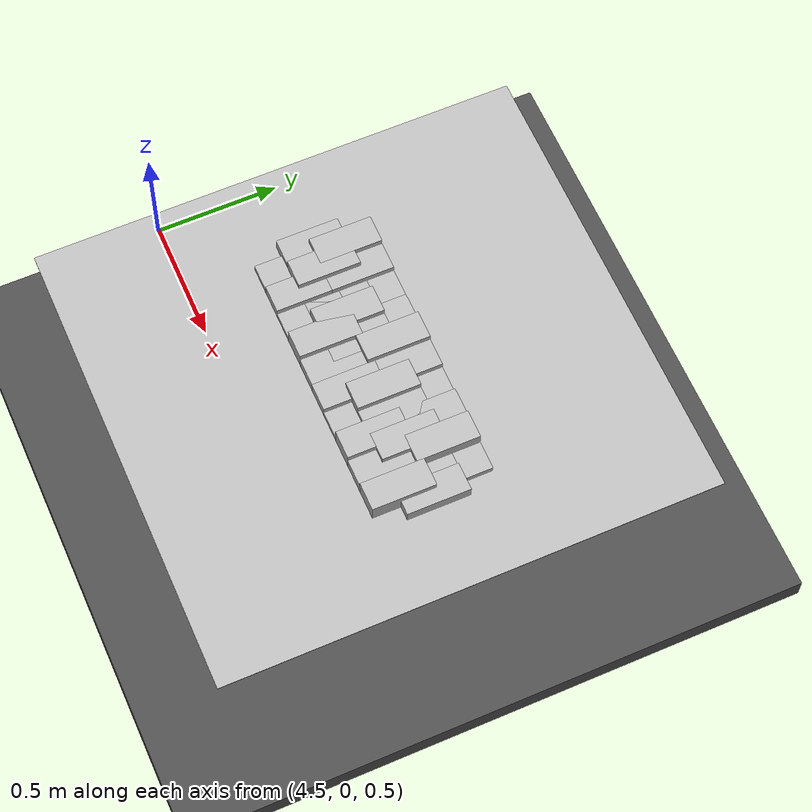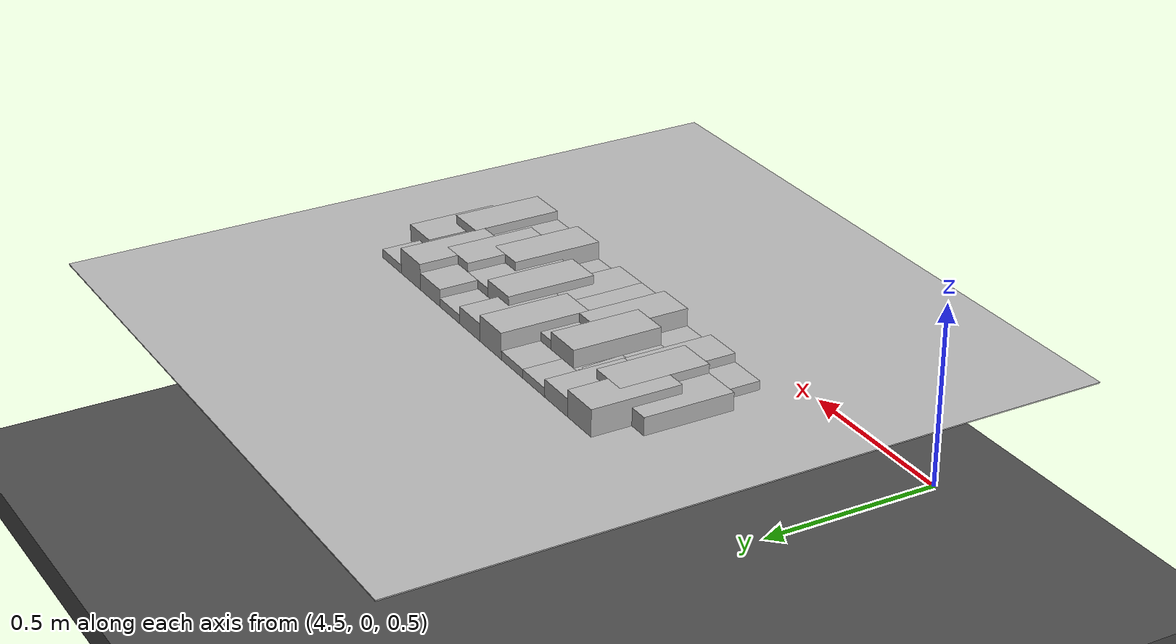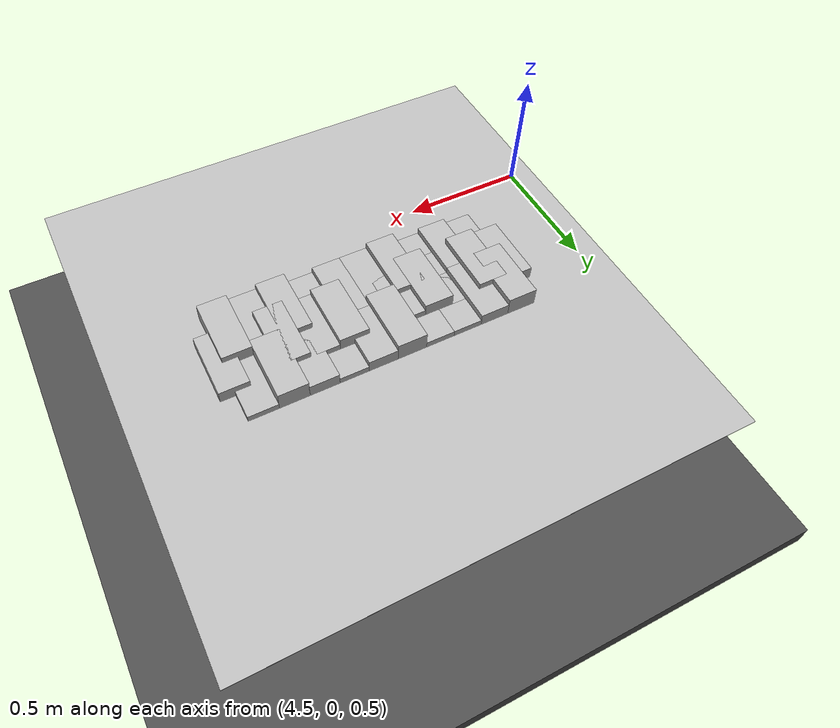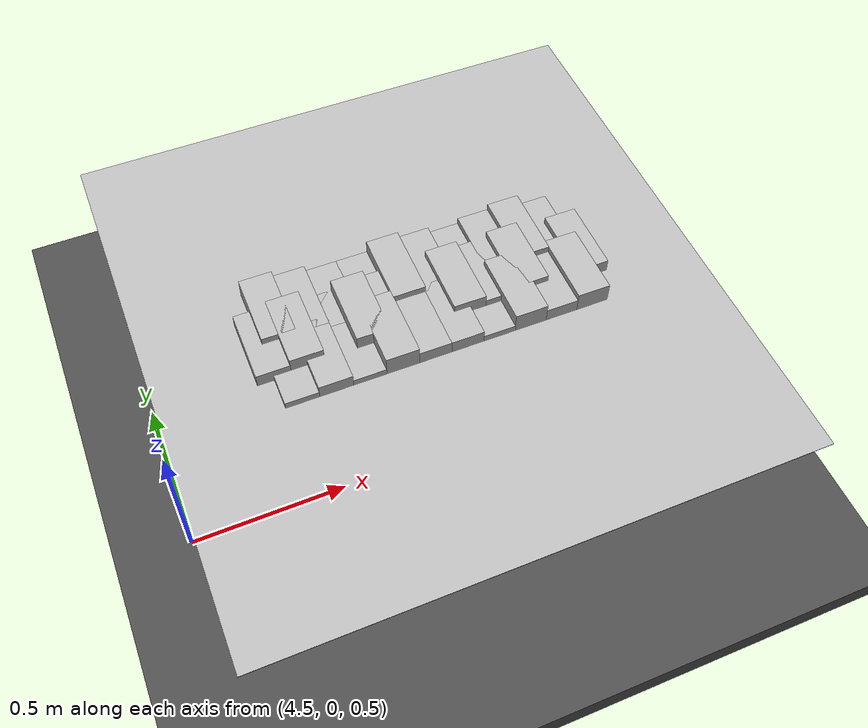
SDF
<sdf version="1.6">
 <world name="default">
  <model name="ground_plane">
   <static>1</static>
   <link name="link">
    <collision name="collision">
     <geometry><plane><normal>0 0 1</normal><size>100 100</size></plane></geometry>
     <surface><friction><ode><mu>100</mu><mu2>50</mu2></ode></friction></surface>
    </collision>
    <visual name="visual">
     <cast_shadows>0</cast_shadows>
     <geometry><plane><normal>0 0 1</normal><size>100 100</size></plane></geometry>
     <material>
      <script><uri>file://media/materials/scripts/gazebo.material</uri><name>Gazebo/Grey</name></script>
     </material>
    </visual>
   </link>
  </model>
  <model name="frc2016_roughterrain_0">
   <link name="link_clone_22">
    <pose>5.57109 0.4713 -0.073164 0 -0 0</pose>
    <inertial>
     <inertia><ixx>nan</ixx><ixy>0</ixy><ixz>0</ixz><iyy>nan</iyy><iyz>0</iyz><izz>nan</izz></inertia>
     <mass>0</mass>
    </inertial>
    <visual name="row1_block5_md">
     <pose>0.05715 0.1143 0.10968 0 -0 0</pose>
     <geometry><box><size>0.115452 0.257474 0.0508</size></box></geometry>
     <material><shader type="pixel"/></material>
    </visual>
    <visual name="row1_block2_lg">
     <pose>0.40005 0.1143 0.12238 0 -0 0</pose>
     <geometry><box><size>0.115452 0.257474 0.0762</size></box></geometry>
     <material><shader type="pixel"/></material>
    </visual>
    <visual name="row1_block3_md">
     <pose>0.28575 0.1143 0.10968 0 -0 0</pose>
     <geometry><box><size>0.115452 0.257474 0.0508</size></box></geometry>
     <material><shader type="pixel"/></material>
    </visual>
    <visual name="row1_block4_sm">
     <pose>0.17145 0.1143 0.09698 0 -0 0</pose>
     <geometry><box><size>0.115452 0.257474 0.0254</size></box></geometry>
     <material><shader type="pixel"/></material>
    </visual>
    <visual name="platform">
     <pose>0 0 0.08269 0 -0 0</pose>
     <geometry><box><size>1.91826 2.01688 0.003175</size></box></geometry>
     <material><shader type="pixel"/></material>
    </visual>
    <visual name="row1_block1_sm">
     <pose>0.51435 0.1143 0.09698 0 -0 0</pose>
     <geometry><box><size>0.115452 0.257474 0.0254</size></box></geometry>
     <material><shader type="pixel"/></material>
    </visual>
    <visual name="row1_block6_lg">
     <pose>-0.05715 0.1143 0.12238 0 -0 0</pose>
     <geometry><box><size>0.115452 0.257474 0.0762</size></box></geometry>
     <material><shader type="pixel"/></material>
    </visual>
    <visual name="row1_block8_sm">
     <pose>-0.28575 0.1143 0.09698 0 -0 0</pose>
     <geometry><box><size>0.115452 0.257474 0.0254</size></box></geometry>
     <material><shader type="pixel"/></material>
    </visual>
    <visual name="row1_block7_sm">
     <pose>-0.17145 0.1143 0.09698 0 -0 0</pose>
     <geometry><box><size>0.115452 0.257474 0.0254</size></box></geometry>
     <material><shader type="pixel"/></material>
    </visual>
    <visual name="row1_block9_md">
     <pose>-0.40005 0.1143 0.10968 0 -0 0</pose>
     <geometry><box><size>0.115452 0.257474 0.0508</size></box></geometry>
     <material><shader type="pixel"/></material>
    </visual>
    <visual name="row1_block10_lg">
     <pose>-0.51435 0.1143 0.12238 0 -0 0</pose>
     <geometry><box><size>0.115452 0.257474 0.0762</size></box></geometry>
     <material><shader type="pixel"/></material>
    </visual>
    <visual name="row2_block1_md">
     <pose>0.5715 0 0.10968 0 -0 0</pose>
     <geometry><box><size>0.115452 0.257474 0.0508</size></box></geometry>
     <material><shader type="pixel"/></material>
    </visual>
    <visual name="row2_block2_sm">
     <pose>0.4572 0 0.09698 0 -0 0</pose>
     <geometry><box><size>0.115452 0.257474 0.0254</size></box></geometry>
     <material><shader type="pixel"/></material>
    </visual>
    <visual name="row2_block3_lg">
     <pose>0.3429 0 0.12238 0 -0 0</pose>
     <geometry><box><size>0.115452 0.257474 0.0762</size></box></geometry>
     <material><shader type="pixel"/></material>
    </visual>
    <visual name="row2_block4_md">
     <pose>0.2286 0 0.10968 0 -0 0</pose>
     <geometry><box><size>0.115452 0.257474 0.0508</size></box></geometry>
     <material><shader type="pixel"/></material>
    </visual>
    <visual name="row2_block5_lg">
     <pose>0.1143 0 0.12238 0 -0 0</pose>
     <geometry><box><size>0.115452 0.257474 0.0762</size></box></geometry>
     <material><shader type="pixel"/></material>
    </visual>
    <visual name="row2_block6_sm">
     <pose>0 0 0.09698 0 -0 0</pose>
     <geometry><box><size>0.115452 0.257474 0.0254</size></box></geometry>
     <material><shader type="pixel"/></material>
    </visual>
    <visual name="row2_block7_md">
     <pose>-0.1143 0 0.10968 0 -0 0</pose>
     <geometry><box><size>0.115452 0.257474 0.0508</size></box></geometry>
     <material><shader type="pixel"/></material>
    </visual>
    <visual name="row2_block8_lg">
     <pose>-0.2286 0 0.12238 0 -0 0</pose>
     <geometry><box><size>0.115452 0.257474 0.0762</size></box></geometry>
     <material><shader type="pixel"/></material>
    </visual>
    <visual name="row2_block9_sm">
     <pose>-0.3429 0 0.09698 0 -0 0</pose>
     <geometry><box><size>0.115452 0.257474 0.0254</size></box></geometry>
     <material><shader type="pixel"/></material>
    </visual>
    <visual name="row2_block10_lg">
     <pose>-0.4572 0 0.12238 0 -0 0</pose>
     <geometry><box><size>0.115452 0.257474 0.0762</size></box></geometry>
     <material><shader type="pixel"/></material>
    </visual>
    <visual name="row2_block11_md">
     <pose>-0.5715 0 0.10968 0 -0 0</pose>
     <geometry><box><size>0.115452 0.257474 0.0508</size></box></geometry>
     <material><shader type="pixel"/></material>
    </visual>
    <visual name="row3_block2_md">
     <pose>0.40005 -0.1143 0.10968 0 -0 0</pose>
     <geometry><box><size>0.115452 0.257474 0.0508</size></box></geometry>
     <material><shader type="pixel"/></material>
    </visual>
    <visual name="row3_block1_lg">
     <pose>0.51435 -0.1143 0.12238 0 -0 0</pose>
     <geometry><box><size>0.115452 0.257474 0.0762</size></box></geometry>
     <material><shader type="pixel"/></material>
    </visual>
    <visual name="row3_block3_lg">
     <pose>0.28575 -0.1143 0.12238 0 -0 0</pose>
     <geometry><box><size>0.115452 0.257474 0.0762</size></box></geometry>
     <material><shader type="pixel"/></material>
    </visual>
    <visual name="row3_block4_sm">
     <pose>0.17145 -0.1143 0.09698 0 -0 0</pose>
     <geometry><box><size>0.115452 0.257474 0.0254</size></box></geometry>
     <material><shader type="pixel"/></material>
    </visual>
    <visual name="row3_block5_md">
     <pose>0.05715 -0.1143 0.10968 0 -0 0</pose>
     <geometry><box><size>0.115452 0.257474 0.0508</size></box></geometry>
     <material><shader type="pixel"/></material>
    </visual>
    <visual name="row3_block6_md">
     <pose>-0.05715 -0.1143 0.10968 0 -0 0</pose>
     <geometry><box><size>0.115452 0.257474 0.0508</size></box></geometry>
     <material><shader type="pixel"/></material>
    </visual>
    <visual name="row3_block8_sm">
     <pose>-0.28575 -0.1143 0.09698 0 -0 0</pose>
     <geometry><box><size>0.115452 0.257474 0.0254</size></box></geometry>
     <material><shader type="pixel"/></material>
    </visual>
    <visual name="row3_block7_lg">
     <pose>-0.17145 -0.1143 0.12238 0 -0 0</pose>
     <geometry><box><size>0.115452 0.257474 0.0762</size></box></geometry>
     <material><shader type="pixel"/></material>
    </visual>
    <visual name="row3_block9_md">
     <pose>-0.40005 -0.1143 0.10968 0 -0 0</pose>
     <geometry><box><size>0.115452 0.257474 0.0508</size></box></geometry>
     <material><shader type="pixel"/></material>
    </visual>
    <visual name="row3_block10_sm">
     <pose>-0.51435 -0.1143 0.09698 0 -0 0</pose>
     <geometry><box><size>0.115452 0.257474 0.0254</size></box></geometry>
     <material><shader type="pixel"/></material>
    </visual>
    <collision name="row2_block5_lg_0">
     <pose>0.1143 0 0.12238 0 -0 0</pose>
     <geometry><box><size>0.115452 0.257474 0.0762</size></box></geometry>
     <surface>
      <friction>
       <ode><mu>1</mu><mu2>1</mu2><fdir1>0 0 0</fdir1><slip1>0</slip1><slip2>0</slip2></ode>
       <torsional>
        <coefficient>1</coefficient>
        <patch_radius>0</patch_radius>
        <surface_radius>0</surface_radius>
        <use_patch_radius>1</use_patch_radius>
        <ode><slip>0</slip></ode>
       </torsional>
      </friction>
      <bounce><restitution_coefficient>0</restitution_coefficient><threshold>1e+06</threshold></bounce>
      <contact>
       <collide_without_contact>0</collide_without_contact>
       <collide_without_contact_bitmask>1</collide_without_contact_bitmask>
       <collide_bitmask>1</collide_bitmask>
       <ode>
        <soft_cfm>0</soft_cfm>
        <soft_erp>0.2</soft_erp>
        <kp>1e+13</kp>
        <kd>1</kd>
        <max_vel>0.01</max_vel>
        <min_depth>0</min_depth>
       </ode>
       <bullet>
        <split_impulse>1</split_impulse>
        <split_impulse_penetration_threshold>-0.01</split_impulse_penetration_threshold>
        <soft_cfm>0</soft_cfm>
        <soft_erp>0.2</soft_erp>
        <kp>1e+13</kp>
        <kd>1</kd>
       </bullet>
      </contact>
     </surface>
    </collision>
    <collision name="platform_0">
     <pose>0 0 0.08269 0 -0 0</pose>
     <geometry><box><size>1.91826 2.01688 0.003175</size></box></geometry>
     <surface>
      <friction>
       <ode><mu>1</mu><mu2>1</mu2><fdir1>0 0 0</fdir1><slip1>0</slip1><slip2>0</slip2></ode>
       <torsional>
        <coefficient>1</coefficient>
        <patch_radius>0</patch_radius>
        <surface_radius>0</surface_radius>
        <use_patch_radius>1</use_patch_radius>
        <ode><slip>0</slip></ode>
       </torsional>
      </friction>
      <bounce><restitution_coefficient>0</restitution_coefficient><threshold>1e+06</threshold></bounce>
      <contact>
       <collide_without_contact>0</collide_without_contact>
       <collide_without_contact_bitmask>1</collide_without_contact_bitmask>
       <collide_bitmask>1</collide_bitmask>
       <ode>
        <soft_cfm>0</soft_cfm>
        <soft_erp>0.2</soft_erp>
        <kp>1e+13</kp>
        <kd>1</kd>
        <max_vel>0.01</max_vel>
        <min_depth>0</min_depth>
       </ode>
       <bullet>
        <split_impulse>1</split_impulse>
        <split_impulse_penetration_threshold>-0.01</split_impulse_penetration_threshold>
        <soft_cfm>0</soft_cfm>
        <soft_erp>0.2</soft_erp>
        <kp>1e+13</kp>
        <kd>1</kd>
       </bullet>
      </contact>
     </surface>
    </collision>
    <collision name="row1_block1_sm_0">
     <pose>0.51435 0.1143 0.09698 0 -0 0</pose>
     <geometry><box><size>0.115452 0.257474 0.0254</size></box></geometry>
     <surface>
      <friction>
       <ode><mu>1</mu><mu2>1</mu2><fdir1>0 0 0</fdir1><slip1>0</slip1><slip2>0</slip2></ode>
       <torsional>
        <coefficient>1</coefficient>
        <patch_radius>0</patch_radius>
        <surface_radius>0</surface_radius>
        <use_patch_radius>1</use_patch_radius>
        <ode><slip>0</slip></ode>
       </torsional>
      </friction>
      <bounce><restitution_coefficient>0</restitution_coefficient><threshold>1e+06</threshold></bounce>
      <contact>
       <collide_without_contact>0</collide_without_contact>
       <collide_without_contact_bitmask>1</collide_without_contact_bitmask>
       <collide_bitmask>1</collide_bitmask>
       <ode>
        <soft_cfm>0</soft_cfm>
        <soft_erp>0.2</soft_erp>
        <kp>1e+13</kp>
        <kd>1</kd>
        <max_vel>0.01</max_vel>
        <min_depth>0</min_depth>
       </ode>
       <bullet>
        <split_impulse>1</split_impulse>
        <split_impulse_penetration_threshold>-0.01</split_impulse_penetration_threshold>
        <soft_cfm>0</soft_cfm>
        <soft_erp>0.2</soft_erp>
        <kp>1e+13</kp>
        <kd>1</kd>
       </bullet>
      </contact>
     </surface>
    </collision>
    <collision name="row1_block3_md_0">
     <pose>0.28575 0.1143 0.10968 0 -0 0</pose>
     <geometry><box><size>0.115452 0.257474 0.0508</size></box></geometry>
     <surface>
      <friction>
       <ode><mu>1</mu><mu2>1</mu2><fdir1>0 0 0</fdir1><slip1>0</slip1><slip2>0</slip2></ode>
       <torsional>
        <coefficient>1</coefficient>
        <patch_radius>0</patch_radius>
        <surface_radius>0</surface_radius>
        <use_patch_radius>1</use_patch_radius>
        <ode><slip>0</slip></ode>
       </torsional>
      </friction>
      <bounce><restitution_coefficient>0</restitution_coefficient><threshold>1e+06</threshold></bounce>
      <contact>
       <collide_without_contact>0</collide_without_contact>
       <collide_without_contact_bitmask>1</collide_without_contact_bitmask>
       <collide_bitmask>1</collide_bitmask>
       <ode>
        <soft_cfm>0</soft_cfm>
        <soft_erp>0.2</soft_erp>
        <kp>1e+13</kp>
        <kd>1</kd>
        <max_vel>0.01</max_vel>
        <min_depth>0</min_depth>
       </ode>
       <bullet>
        <split_impulse>1</split_impulse>
        <split_impulse_penetration_threshold>-0.01</split_impulse_penetration_threshold>
        <soft_cfm>0</soft_cfm>
        <soft_erp>0.2</soft_erp>
        <kp>1e+13</kp>
        <kd>1</kd>
       </bullet>
      </contact>
     </surface>
    </collision>
    <collision name="row1_block2_lg_0">
     <pose>0.40005 0.1143 0.12238 0 -0 0</pose>
     <geometry><box><size>0.115452 0.257474 0.0762</size></box></geometry>
     <surface>
      <friction>
       <ode><mu>1</mu><mu2>1</mu2><fdir1>0 0 0</fdir1><slip1>0</slip1><slip2>0</slip2></ode>
       <torsional>
        <coefficient>1</coefficient>
        <patch_radius>0</patch_radius>
        <surface_radius>0</surface_radius>
        <use_patch_radius>1</use_patch_radius>
        <ode><slip>0</slip></ode>
       </torsional>
      </friction>
      <bounce><restitution_coefficient>0</restitution_coefficient><threshold>1e+06</threshold></bounce>
      <contact>
       <collide_without_contact>0</collide_without_contact>
       <collide_without_contact_bitmask>1</collide_without_contact_bitmask>
       <collide_bitmask>1</collide_bitmask>
       <ode>
        <soft_cfm>0</soft_cfm>
        <soft_erp>0.2</soft_erp>
        <kp>1e+13</kp>
        <kd>1</kd>
        <max_vel>0.01</max_vel>
        <min_depth>0</min_depth>
       </ode>
       <bullet>
        <split_impulse>1</split_impulse>
        <split_impulse_penetration_threshold>-0.01</split_impulse_penetration_threshold>
        <soft_cfm>0</soft_cfm>
        <soft_erp>0.2</soft_erp>
        <kp>1e+13</kp>
        <kd>1</kd>
       </bullet>
      </contact>
     </surface>
    </collision>
    <collision name="row1_block6_lg_0">
     <pose>-0.05715 0.1143 0.12238 0 -0 0</pose>
     <geometry><box><size>0.115452 0.257474 0.0762</size></box></geometry>
     <surface>
      <friction>
       <ode><mu>1</mu><mu2>1</mu2><fdir1>0 0 0</fdir1><slip1>0</slip1><slip2>0</slip2></ode>
       <torsional>
        <coefficient>1</coefficient>
        <patch_radius>0</patch_radius>
        <surface_radius>0</surface_radius>
        <use_patch_radius>1</use_patch_radius>
        <ode><slip>0</slip></ode>
       </torsional>
      </friction>
      <bounce><restitution_coefficient>0</restitution_coefficient><threshold>1e+06</threshold></bounce>
      <contact>
       <collide_without_contact>0</collide_without_contact>
       <collide_without_contact_bitmask>1</collide_without_contact_bitmask>
       <collide_bitmask>1</collide_bitmask>
       <ode>
        <soft_cfm>0</soft_cfm>
        <soft_erp>0.2</soft_erp>
        <kp>1e+13</kp>
        <kd>1</kd>
        <max_vel>0.01</max_vel>
        <min_depth>0</min_depth>
       </ode>
       <bullet>
        <split_impulse>1</split_impulse>
        <split_impulse_penetration_threshold>-0.01</split_impulse_penetration_threshold>
        <soft_cfm>0</soft_cfm>
        <soft_erp>0.2</soft_erp>
        <kp>1e+13</kp>
        <kd>1</kd>
       </bullet>
      </contact>
     </surface>
    </collision>
    <collision name="row1_block5_md_0">
     <pose>0.05715 0.1143 0.10968 0 -0 0</pose>
     <geometry><box><size>0.115452 0.257474 0.0508</size></box></geometry>
     <surface>
      <friction>
       <ode><mu>1</mu><mu2>1</mu2><fdir1>0 0 0</fdir1><slip1>0</slip1><slip2>0</slip2></ode>
       <torsional>
        <coefficient>1</coefficient>
        <patch_radius>0</patch_radius>
        <surface_radius>0</surface_radius>
        <use_patch_radius>1</use_patch_radius>
        <ode><slip>0</slip></ode>
       </torsional>
      </friction>
      <bounce><restitution_coefficient>0</restitution_coefficient><threshold>1e+06</threshold></bounce>
      <contact>
       <collide_without_contact>0</collide_without_contact>
       <collide_without_contact_bitmask>1</collide_without_contact_bitmask>
       <collide_bitmask>1</collide_bitmask>
       <ode>
        <soft_cfm>0</soft_cfm>
        <soft_erp>0.2</soft_erp>
        <kp>1e+13</kp>
        <kd>1</kd>
        <max_vel>0.01</max_vel>
        <min_depth>0</min_depth>
       </ode>
       <bullet>
        <split_impulse>1</split_impulse>
        <split_impulse_penetration_threshold>-0.01</split_impulse_penetration_threshold>
        <soft_cfm>0</soft_cfm>
        <soft_erp>0.2</soft_erp>
        <kp>1e+13</kp>
        <kd>1</kd>
       </bullet>
      </contact>
     </surface>
    </collision>
    <collision name="row1_block4_sm_0">
     <pose>0.17145 0.1143 0.09698 0 -0 0</pose>
     <geometry><box><size>0.115452 0.257474 0.0254</size></box></geometry>
     <surface>
      <friction>
       <ode><mu>1</mu><mu2>1</mu2><fdir1>0 0 0</fdir1><slip1>0</slip1><slip2>0</slip2></ode>
       <torsional>
        <coefficient>1</coefficient>
        <patch_radius>0</patch_radius>
        <surface_radius>0</surface_radius>
        <use_patch_radius>1</use_patch_radius>
        <ode><slip>0</slip></ode>
       </torsional>
      </friction>
      <bounce><restitution_coefficient>0</restitution_coefficient><threshold>1e+06</threshold></bounce>
      <contact>
       <collide_without_contact>0</collide_without_contact>
       <collide_without_contact_bitmask>1</collide_without_contact_bitmask>
       <collide_bitmask>1</collide_bitmask>
       <ode>
        <soft_cfm>0</soft_cfm>
        <soft_erp>0.2</soft_erp>
        <kp>1e+13</kp>
        <kd>1</kd>
        <max_vel>0.01</max_vel>
        <min_depth>0</min_depth>
       </ode>
       <bullet>
        <split_impulse>1</split_impulse>
        <split_impulse_penetration_threshold>-0.01</split_impulse_penetration_threshold>
        <soft_cfm>0</soft_cfm>
        <soft_erp>0.2</soft_erp>
        <kp>1e+13</kp>
        <kd>1</kd>
       </bullet>
      </contact>
     </surface>
    </collision>
    <collision name="row1_block9_md_0">
     <pose>-0.40005 0.1143 0.10968 0 -0 0</pose>
     <geometry><box><size>0.115452 0.257474 0.0508</size></box></geometry>
     <surface>
      <friction>
       <ode><mu>1</mu><mu2>1</mu2><fdir1>0 0 0</fdir1><slip1>0</slip1><slip2>0</slip2></ode>
       <torsional>
        <coefficient>1</coefficient>
        <patch_radius>0</patch_radius>
        <surface_radius>0</surface_radius>
        <use_patch_radius>1</use_patch_radius>
        <ode><slip>0</slip></ode>
       </torsional>
      </friction>
      <bounce><restitution_coefficient>0</restitution_coefficient><threshold>1e+06</threshold></bounce>
      <contact>
       <collide_without_contact>0</collide_without_contact>
       <collide_without_contact_bitmask>1</collide_without_contact_bitmask>
       <collide_bitmask>1</collide_bitmask>
       <ode>
        <soft_cfm>0</soft_cfm>
        <soft_erp>0.2</soft_erp>
        <kp>1e+13</kp>
        <kd>1</kd>
        <max_vel>0.01</max_vel>
        <min_depth>0</min_depth>
       </ode>
       <bullet>
        <split_impulse>1</split_impulse>
        <split_impulse_penetration_threshold>-0.01</split_impulse_penetration_threshold>
        <soft_cfm>0</soft_cfm>
        <soft_erp>0.2</soft_erp>
        <kp>1e+13</kp>
        <kd>1</kd>
       </bullet>
      </contact>
     </surface>
    </collision>
    <collision name="row1_block7_sm_0">
     <pose>-0.17145 0.1143 0.09698 0 -0 0</pose>
     <geometry><box><size>0.115452 0.257474 0.0254</size></box></geometry>
     <surface>
      <friction>
       <ode><mu>1</mu><mu2>1</mu2><fdir1>0 0 0</fdir1><slip1>0</slip1><slip2>0</slip2></ode>
       <torsional>
        <coefficient>1</coefficient>
        <patch_radius>0</patch_radius>
        <surface_radius>0</surface_radius>
        <use_patch_radius>1</use_patch_radius>
        <ode><slip>0</slip></ode>
       </torsional>
      </friction>
      <bounce><restitution_coefficient>0</restitution_coefficient><threshold>1e+06</threshold></bounce>
      <contact>
       <collide_without_contact>0</collide_without_contact>
       <collide_without_contact_bitmask>1</collide_without_contact_bitmask>
       <collide_bitmask>1</collide_bitmask>
       <ode>
        <soft_cfm>0</soft_cfm>
        <soft_erp>0.2</soft_erp>
        <kp>1e+13</kp>
        <kd>1</kd>
        <max_vel>0.01</max_vel>
        <min_depth>0</min_depth>
       </ode>
       <bullet>
        <split_impulse>1</split_impulse>
        <split_impulse_penetration_threshold>-0.01</split_impulse_penetration_threshold>
        <soft_cfm>0</soft_cfm>
        <soft_erp>0.2</soft_erp>
        <kp>1e+13</kp>
        <kd>1</kd>
       </bullet>
      </contact>
     </surface>
    </collision>
    <collision name="row1_block8_sm_0">
     <pose>-0.28575 0.1143 0.09698 0 -0 0</pose>
     <geometry><box><size>0.115452 0.257474 0.0254</size></box></geometry>
     <surface>
      <friction>
       <ode><mu>1</mu><mu2>1</mu2><fdir1>0 0 0</fdir1><slip1>0</slip1><slip2>0</slip2></ode>
       <torsional>
        <coefficient>1</coefficient>
        <patch_radius>0</patch_radius>
        <surface_radius>0</surface_radius>
        <use_patch_radius>1</use_patch_radius>
        <ode><slip>0</slip></ode>
       </torsional>
      </friction>
      <bounce><restitution_coefficient>0</restitution_coefficient><threshold>1e+06</threshold></bounce>
      <contact>
       <collide_without_contact>0</collide_without_contact>
       <collide_without_contact_bitmask>1</collide_without_contact_bitmask>
       <collide_bitmask>1</collide_bitmask>
       <ode>
        <soft_cfm>0</soft_cfm>
        <soft_erp>0.2</soft_erp>
        <kp>1e+13</kp>
        <kd>1</kd>
        <max_vel>0.01</max_vel>
        <min_depth>0</min_depth>
       </ode>
       <bullet>
        <split_impulse>1</split_impulse>
        <split_impulse_penetration_threshold>-0.01</split_impulse_penetration_threshold>
        <soft_cfm>0</soft_cfm>
        <soft_erp>0.2</soft_erp>
        <kp>1e+13</kp>
        <kd>1</kd>
       </bullet>
      </contact>
     </surface>
    </collision>
    <collision name="row1_block10_lg_0">
     <pose>-0.51435 0.1143 0.12238 0 -0 0</pose>
     <geometry><box><size>0.115452 0.257474 0.0762</size></box></geometry>
     <surface>
      <friction>
       <ode><mu>1</mu><mu2>1</mu2><fdir1>0 0 0</fdir1><slip1>0</slip1><slip2>0</slip2></ode>
       <torsional>
        <coefficient>1</coefficient>
        <patch_radius>0</patch_radius>
        <surface_radius>0</surface_radius>
        <use_patch_radius>1</use_patch_radius>
        <ode><slip>0</slip></ode>
       </torsional>
      </friction>
      <bounce><restitution_coefficient>0</restitution_coefficient><threshold>1e+06</threshold></bounce>
      <contact>
       <collide_without_contact>0</collide_without_contact>
       <collide_without_contact_bitmask>1</collide_without_contact_bitmask>
       <collide_bitmask>1</collide_bitmask>
       <ode>
        <soft_cfm>0</soft_cfm>
        <soft_erp>0.2</soft_erp>
        <kp>1e+13</kp>
        <kd>1</kd>
        <max_vel>0.01</max_vel>
        <min_depth>0</min_depth>
       </ode>
       <bullet>
        <split_impulse>1</split_impulse>
        <split_impulse_penetration_threshold>-0.01</split_impulse_penetration_threshold>
        <soft_cfm>0</soft_cfm>
        <soft_erp>0.2</soft_erp>
        <kp>1e+13</kp>
        <kd>1</kd>
       </bullet>
      </contact>
     </surface>
    </collision>
    <collision name="row2_block2_sm_0">
     <pose>0.4572 0 0.09698 0 -0 0</pose>
     <geometry><box><size>0.115452 0.257474 0.0254</size></box></geometry>
     <surface>
      <friction>
       <ode><mu>1</mu><mu2>1</mu2><fdir1>0 0 0</fdir1><slip1>0</slip1><slip2>0</slip2></ode>
       <torsional>
        <coefficient>1</coefficient>
        <patch_radius>0</patch_radius>
        <surface_radius>0</surface_radius>
        <use_patch_radius>1</use_patch_radius>
        <ode><slip>0</slip></ode>
       </torsional>
      </friction>
      <bounce><restitution_coefficient>0</restitution_coefficient><threshold>1e+06</threshold></bounce>
      <contact>
       <collide_without_contact>0</collide_without_contact>
       <collide_without_contact_bitmask>1</collide_without_contact_bitmask>
       <collide_bitmask>1</collide_bitmask>
       <ode>
        <soft_cfm>0</soft_cfm>
        <soft_erp>0.2</soft_erp>
        <kp>1e+13</kp>
        <kd>1</kd>
        <max_vel>0.01</max_vel>
        <min_depth>0</min_depth>
       </ode>
       <bullet>
        <split_impulse>1</split_impulse>
        <split_impulse_penetration_threshold>-0.01</split_impulse_penetration_threshold>
        <soft_cfm>0</soft_cfm>
        <soft_erp>0.2</soft_erp>
        <kp>1e+13</kp>
        <kd>1</kd>
       </bullet>
      </contact>
     </surface>
    </collision>
    <collision name="row2_block1_md_0">
     <pose>0.5715 0 0.10968 0 -0 0</pose>
     <geometry><box><size>0.115452 0.257474 0.0508</size></box></geometry>
     <surface>
      <friction>
       <ode><mu>1</mu><mu2>1</mu2><fdir1>0 0 0</fdir1><slip1>0</slip1><slip2>0</slip2></ode>
       <torsional>
        <coefficient>1</coefficient>
        <patch_radius>0</patch_radius>
        <surface_radius>0</surface_radius>
        <use_patch_radius>1</use_patch_radius>
        <ode><slip>0</slip></ode>
       </torsional>
      </friction>
      <bounce><restitution_coefficient>0</restitution_coefficient><threshold>1e+06</threshold></bounce>
      <contact>
       <collide_without_contact>0</collide_without_contact>
       <collide_without_contact_bitmask>1</collide_without_contact_bitmask>
       <collide_bitmask>1</collide_bitmask>
       <ode>
        <soft_cfm>0</soft_cfm>
        <soft_erp>0.2</soft_erp>
        <kp>1e+13</kp>
        <kd>1</kd>
        <max_vel>0.01</max_vel>
        <min_depth>0</min_depth>
       </ode>
       <bullet>
        <split_impulse>1</split_impulse>
        <split_impulse_penetration_threshold>-0.01</split_impulse_penetration_threshold>
        <soft_cfm>0</soft_cfm>
        <soft_erp>0.2</soft_erp>
        <kp>1e+13</kp>
        <kd>1</kd>
       </bullet>
      </contact>
     </surface>
    </collision>
    <collision name="row2_block4_md_0">
     <pose>0.2286 0 0.10968 0 -0 0</pose>
     <geometry><box><size>0.115452 0.257474 0.0508</size></box></geometry>
     <surface>
      <friction>
       <ode><mu>1</mu><mu2>1</mu2><fdir1>0 0 0</fdir1><slip1>0</slip1><slip2>0</slip2></ode>
       <torsional>
        <coefficient>1</coefficient>
        <patch_radius>0</patch_radius>
        <surface_radius>0</surface_radius>
        <use_patch_radius>1</use_patch_radius>
        <ode><slip>0</slip></ode>
       </torsional>
      </friction>
      <bounce><restitution_coefficient>0</restitution_coefficient><threshold>1e+06</threshold></bounce>
      <contact>
       <collide_without_contact>0</collide_without_contact>
       <collide_without_contact_bitmask>1</collide_without_contact_bitmask>
       <collide_bitmask>1</collide_bitmask>
       <ode>
        <soft_cfm>0</soft_cfm>
        <soft_erp>0.2</soft_erp>
        <kp>1e+13</kp>
        <kd>1</kd>
        <max_vel>0.01</max_vel>
        <min_depth>0</min_depth>
       </ode>
       <bullet>
        <split_impulse>1</split_impulse>
        <split_impulse_penetration_threshold>-0.01</split_impulse_penetration_threshold>
        <soft_cfm>0</soft_cfm>
        <soft_erp>0.2</soft_erp>
        <kp>1e+13</kp>
        <kd>1</kd>
       </bullet>
      </contact>
     </surface>
    </collision>
    <collision name="row2_block3_lg_0">
     <pose>0.3429 0 0.12238 0 -0 0</pose>
     <geometry><box><size>0.115452 0.257474 0.0762</size></box></geometry>
     <surface>
      <friction>
       <ode><mu>1</mu><mu2>1</mu2><fdir1>0 0 0</fdir1><slip1>0</slip1><slip2>0</slip2></ode>
       <torsional>
        <coefficient>1</coefficient>
        <patch_radius>0</patch_radius>
        <surface_radius>0</surface_radius>
        <use_patch_radius>1</use_patch_radius>
        <ode><slip>0</slip></ode>
       </torsional>
      </friction>
      <bounce><restitution_coefficient>0</restitution_coefficient><threshold>1e+06</threshold></bounce>
      <contact>
       <collide_without_contact>0</collide_without_contact>
       <collide_without_contact_bitmask>1</collide_without_contact_bitmask>
       <collide_bitmask>1</collide_bitmask>
       <ode>
        <soft_cfm>0</soft_cfm>
        <soft_erp>0.2</soft_erp>
        <kp>1e+13</kp>
        <kd>1</kd>
        <max_vel>0.01</max_vel>
        <min_depth>0</min_depth>
       </ode>
       <bullet>
        <split_impulse>1</split_impulse>
        <split_impulse_penetration_threshold>-0.01</split_impulse_penetration_threshold>
        <soft_cfm>0</soft_cfm>
        <soft_erp>0.2</soft_erp>
        <kp>1e+13</kp>
        <kd>1</kd>
       </bullet>
      </contact>
     </surface>
    </collision>
    <collision name="row2_block10_lg_0">
     <pose>-0.4572 0 0.12238 0 -0 0</pose>
     <geometry><box><size>0.115452 0.257474 0.0762</size></box></geometry>
     <surface>
      <friction>
       <ode><mu>1</mu><mu2>1</mu2><fdir1>0 0 0</fdir1><slip1>0</slip1><slip2>0</slip2></ode>
       <torsional>
        <coefficient>1</coefficient>
        <patch_radius>0</patch_radius>
        <surface_radius>0</surface_radius>
        <use_patch_radius>1</use_patch_radius>
        <ode><slip>0</slip></ode>
       </torsional>
      </friction>
      <bounce><restitution_coefficient>0</restitution_coefficient><threshold>1e+06</threshold></bounce>
      <contact>
       <collide_without_contact>0</collide_without_contact>
       <collide_without_contact_bitmask>1</collide_without_contact_bitmask>
       <collide_bitmask>1</collide_bitmask>
       <ode>
        <soft_cfm>0</soft_cfm>
        <soft_erp>0.2</soft_erp>
        <kp>1e+13</kp>
        <kd>1</kd>
        <max_vel>0.01</max_vel>
        <min_depth>0</min_depth>
       </ode>
       <bullet>
        <split_impulse>1</split_impulse>
        <split_impulse_penetration_threshold>-0.01</split_impulse_penetration_threshold>
        <soft_cfm>0</soft_cfm>
        <soft_erp>0.2</soft_erp>
        <kp>1e+13</kp>
        <kd>1</kd>
       </bullet>
      </contact>
     </surface>
    </collision>
    <collision name="row2_block6_sm_0">
     <pose>0 0 0.09698 0 -0 0</pose>
     <geometry><box><size>0.115452 0.257474 0.0254</size></box></geometry>
     <surface>
      <friction>
       <ode><mu>1</mu><mu2>1</mu2><fdir1>0 0 0</fdir1><slip1>0</slip1><slip2>0</slip2></ode>
       <torsional>
        <coefficient>1</coefficient>
        <patch_radius>0</patch_radius>
        <surface_radius>0</surface_radius>
        <use_patch_radius>1</use_patch_radius>
        <ode><slip>0</slip></ode>
       </torsional>
      </friction>
      <bounce><restitution_coefficient>0</restitution_coefficient><threshold>1e+06</threshold></bounce>
      <contact>
       <collide_without_contact>0</collide_without_contact>
       <collide_without_contact_bitmask>1</collide_without_contact_bitmask>
       <collide_bitmask>1</collide_bitmask>
       <ode>
        <soft_cfm>0</soft_cfm>
        <soft_erp>0.2</soft_erp>
        <kp>1e+13</kp>
        <kd>1</kd>
        <max_vel>0.01</max_vel>
        <min_depth>0</min_depth>
       </ode>
       <bullet>
        <split_impulse>1</split_impulse>
        <split_impulse_penetration_threshold>-0.01</split_impulse_penetration_threshold>
        <soft_cfm>0</soft_cfm>
        <soft_erp>0.2</soft_erp>
        <kp>1e+13</kp>
        <kd>1</kd>
       </bullet>
      </contact>
     </surface>
    </collision>
    <collision name="row2_block7_md_0">
     <pose>-0.1143 0 0.10968 0 -0 0</pose>
     <geometry><box><size>0.115452 0.257474 0.0508</size></box></geometry>
     <surface>
      <friction>
       <ode><mu>1</mu><mu2>1</mu2><fdir1>0 0 0</fdir1><slip1>0</slip1><slip2>0</slip2></ode>
       <torsional>
        <coefficient>1</coefficient>
        <patch_radius>0</patch_radius>
        <surface_radius>0</surface_radius>
        <use_patch_radius>1</use_patch_radius>
        <ode><slip>0</slip></ode>
       </torsional>
      </friction>
      <bounce><restitution_coefficient>0</restitution_coefficient><threshold>1e+06</threshold></bounce>
      <contact>
       <collide_without_contact>0</collide_without_contact>
       <collide_without_contact_bitmask>1</collide_without_contact_bitmask>
       <collide_bitmask>1</collide_bitmask>
       <ode>
        <soft_cfm>0</soft_cfm>
        <soft_erp>0.2</soft_erp>
        <kp>1e+13</kp>
        <kd>1</kd>
        <max_vel>0.01</max_vel>
        <min_depth>0</min_depth>
       </ode>
       <bullet>
        <split_impulse>1</split_impulse>
        <split_impulse_penetration_threshold>-0.01</split_impulse_penetration_threshold>
        <soft_cfm>0</soft_cfm>
        <soft_erp>0.2</soft_erp>
        <kp>1e+13</kp>
        <kd>1</kd>
       </bullet>
      </contact>
     </surface>
    </collision>
    <collision name="row2_block8_lg_0">
     <pose>-0.2286 0 0.12238 0 -0 0</pose>
     <geometry><box><size>0.115452 0.257474 0.0762</size></box></geometry>
     <surface>
      <friction>
       <ode><mu>1</mu><mu2>1</mu2><fdir1>0 0 0</fdir1><slip1>0</slip1><slip2>0</slip2></ode>
       <torsional>
        <coefficient>1</coefficient>
        <patch_radius>0</patch_radius>
        <surface_radius>0</surface_radius>
        <use_patch_radius>1</use_patch_radius>
        <ode><slip>0</slip></ode>
       </torsional>
      </friction>
      <bounce><restitution_coefficient>0</restitution_coefficient><threshold>1e+06</threshold></bounce>
      <contact>
       <collide_without_contact>0</collide_without_contact>
       <collide_without_contact_bitmask>1</collide_without_contact_bitmask>
       <collide_bitmask>1</collide_bitmask>
       <ode>
        <soft_cfm>0</soft_cfm>
        <soft_erp>0.2</soft_erp>
        <kp>1e+13</kp>
        <kd>1</kd>
        <max_vel>0.01</max_vel>
        <min_depth>0</min_depth>
       </ode>
       <bullet>
        <split_impulse>1</split_impulse>
        <split_impulse_penetration_threshold>-0.01</split_impulse_penetration_threshold>
        <soft_cfm>0</soft_cfm>
        <soft_erp>0.2</soft_erp>
        <kp>1e+13</kp>
        <kd>1</kd>
       </bullet>
      </contact>
     </surface>
    </collision>
    <collision name="row3_block2_md_0">
     <pose>0.40005 -0.1143 0.10968 0 -0 0</pose>
     <geometry><box><size>0.115452 0.257474 0.0508</size></box></geometry>
     <surface>
      <friction>
       <ode><mu>1</mu><mu2>1</mu2><fdir1>0 0 0</fdir1><slip1>0</slip1><slip2>0</slip2></ode>
       <torsional>
        <coefficient>1</coefficient>
        <patch_radius>0</patch_radius>
        <surface_radius>0</surface_radius>
        <use_patch_radius>1</use_patch_radius>
        <ode><slip>0</slip></ode>
       </torsional>
      </friction>
      <bounce><restitution_coefficient>0</restitution_coefficient><threshold>1e+06</threshold></bounce>
      <contact>
       <collide_without_contact>0</collide_without_contact>
       <collide_without_contact_bitmask>1</collide_without_contact_bitmask>
       <collide_bitmask>1</collide_bitmask>
       <ode>
        <soft_cfm>0</soft_cfm>
        <soft_erp>0.2</soft_erp>
        <kp>1e+13</kp>
        <kd>1</kd>
        <max_vel>0.01</max_vel>
        <min_depth>0</min_depth>
       </ode>
       <bullet>
        <split_impulse>1</split_impulse>
        <split_impulse_penetration_threshold>-0.01</split_impulse_penetration_threshold>
        <soft_cfm>0</soft_cfm>
        <soft_erp>0.2</soft_erp>
        <kp>1e+13</kp>
        <kd>1</kd>
       </bullet>
      </contact>
     </surface>
    </collision>
    <collision name="row2_block9_sm_0">
     <pose>-0.3429 0 0.09698 0 -0 0</pose>
     <geometry><box><size>0.115452 0.257474 0.0254</size></box></geometry>
     <surface>
      <friction>
       <ode><mu>1</mu><mu2>1</mu2><fdir1>0 0 0</fdir1><slip1>0</slip1><slip2>0</slip2></ode>
       <torsional>
        <coefficient>1</coefficient>
        <patch_radius>0</patch_radius>
        <surface_radius>0</surface_radius>
        <use_patch_radius>1</use_patch_radius>
        <ode><slip>0</slip></ode>
       </torsional>
      </friction>
      <bounce><restitution_coefficient>0</restitution_coefficient><threshold>1e+06</threshold></bounce>
      <contact>
       <collide_without_contact>0</collide_without_contact>
       <collide_without_contact_bitmask>1</collide_without_contact_bitmask>
       <collide_bitmask>1</collide_bitmask>
       <ode>
        <soft_cfm>0</soft_cfm>
        <soft_erp>0.2</soft_erp>
        <kp>1e+13</kp>
        <kd>1</kd>
        <max_vel>0.01</max_vel>
        <min_depth>0</min_depth>
       </ode>
       <bullet>
        <split_impulse>1</split_impulse>
        <split_impulse_penetration_threshold>-0.01</split_impulse_penetration_threshold>
        <soft_cfm>0</soft_cfm>
        <soft_erp>0.2</soft_erp>
        <kp>1e+13</kp>
        <kd>1</kd>
       </bullet>
      </contact>
     </surface>
    </collision>
    <collision name="row2_block11_md_0">
     <pose>-0.5715 0 0.10968 0 -0 0</pose>
     <geometry><box><size>0.115452 0.257474 0.0508</size></box></geometry>
     <surface>
      <friction>
       <ode><mu>1</mu><mu2>1</mu2><fdir1>0 0 0</fdir1><slip1>0</slip1><slip2>0</slip2></ode>
       <torsional>
        <coefficient>1</coefficient>
        <patch_radius>0</patch_radius>
        <surface_radius>0</surface_radius>
        <use_patch_radius>1</use_patch_radius>
        <ode><slip>0</slip></ode>
       </torsional>
      </friction>
      <bounce><restitution_coefficient>0</restitution_coefficient><threshold>1e+06</threshold></bounce>
      <contact>
       <collide_without_contact>0</collide_without_contact>
       <collide_without_contact_bitmask>1</collide_without_contact_bitmask>
       <collide_bitmask>1</collide_bitmask>
       <ode>
        <soft_cfm>0</soft_cfm>
        <soft_erp>0.2</soft_erp>
        <kp>1e+13</kp>
        <kd>1</kd>
        <max_vel>0.01</max_vel>
        <min_depth>0</min_depth>
       </ode>
       <bullet>
        <split_impulse>1</split_impulse>
        <split_impulse_penetration_threshold>-0.01</split_impulse_penetration_threshold>
        <soft_cfm>0</soft_cfm>
        <soft_erp>0.2</soft_erp>
        <kp>1e+13</kp>
        <kd>1</kd>
       </bullet>
      </contact>
     </surface>
    </collision>
    <collision name="row3_block4_sm_0">
     <pose>0.17145 -0.1143 0.09698 0 -0 0</pose>
     <geometry><box><size>0.115452 0.257474 0.0254</size></box></geometry>
     <surface>
      <friction>
       <ode><mu>1</mu><mu2>1</mu2><fdir1>0 0 0</fdir1><slip1>0</slip1><slip2>0</slip2></ode>
       <torsional>
        <coefficient>1</coefficient>
        <patch_radius>0</patch_radius>
        <surface_radius>0</surface_radius>
        <use_patch_radius>1</use_patch_radius>
        <ode><slip>0</slip></ode>
       </torsional>
      </friction>
      <bounce><restitution_coefficient>0</restitution_coefficient><threshold>1e+06</threshold></bounce>
      <contact>
       <collide_without_contact>0</collide_without_contact>
       <collide_without_contact_bitmask>1</collide_without_contact_bitmask>
       <collide_bitmask>1</collide_bitmask>
       <ode>
        <soft_cfm>0</soft_cfm>
        <soft_erp>0.2</soft_erp>
        <kp>1e+13</kp>
        <kd>1</kd>
        <max_vel>0.01</max_vel>
        <min_depth>0</min_depth>
       </ode>
       <bullet>
        <split_impulse>1</split_impulse>
        <split_impulse_penetration_threshold>-0.01</split_impulse_penetration_threshold>
        <soft_cfm>0</soft_cfm>
        <soft_erp>0.2</soft_erp>
        <kp>1e+13</kp>
        <kd>1</kd>
       </bullet>
      </contact>
     </surface>
    </collision>
    <collision name="row3_block1_lg_0">
     <pose>0.51435 -0.1143 0.12238 0 -0 0</pose>
     <geometry><box><size>0.115452 0.257474 0.0762</size></box></geometry>
     <surface>
      <friction>
       <ode><mu>1</mu><mu2>1</mu2><fdir1>0 0 0</fdir1><slip1>0</slip1><slip2>0</slip2></ode>
       <torsional>
        <coefficient>1</coefficient>
        <patch_radius>0</patch_radius>
        <surface_radius>0</surface_radius>
        <use_patch_radius>1</use_patch_radius>
        <ode><slip>0</slip></ode>
       </torsional>
      </friction>
      <bounce><restitution_coefficient>0</restitution_coefficient><threshold>1e+06</threshold></bounce>
      <contact>
       <collide_without_contact>0</collide_without_contact>
       <collide_without_contact_bitmask>1</collide_without_contact_bitmask>
       <collide_bitmask>1</collide_bitmask>
       <ode>
        <soft_cfm>0</soft_cfm>
        <soft_erp>0.2</soft_erp>
        <kp>1e+13</kp>
        <kd>1</kd>
        <max_vel>0.01</max_vel>
        <min_depth>0</min_depth>
       </ode>
       <bullet>
        <split_impulse>1</split_impulse>
        <split_impulse_penetration_threshold>-0.01</split_impulse_penetration_threshold>
        <soft_cfm>0</soft_cfm>
        <soft_erp>0.2</soft_erp>
        <kp>1e+13</kp>
        <kd>1</kd>
       </bullet>
      </contact>
     </surface>
    </collision>
    <collision name="row3_block3_lg_0">
     <pose>0.28575 -0.1143 0.12238 0 -0 0</pose>
     <geometry><box><size>0.115452 0.257474 0.0762</size></box></geometry>
     <surface>
      <friction>
       <ode><mu>1</mu><mu2>1</mu2><fdir1>0 0 0</fdir1><slip1>0</slip1><slip2>0</slip2></ode>
       <torsional>
        <coefficient>1</coefficient>
        <patch_radius>0</patch_radius>
        <surface_radius>0</surface_radius>
        <use_patch_radius>1</use_patch_radius>
        <ode><slip>0</slip></ode>
       </torsional>
      </friction>
      <bounce><restitution_coefficient>0</restitution_coefficient><threshold>1e+06</threshold></bounce>
      <contact>
       <collide_without_contact>0</collide_without_contact>
       <collide_without_contact_bitmask>1</collide_without_contact_bitmask>
       <collide_bitmask>1</collide_bitmask>
       <ode>
        <soft_cfm>0</soft_cfm>
        <soft_erp>0.2</soft_erp>
        <kp>1e+13</kp>
        <kd>1</kd>
        <max_vel>0.01</max_vel>
        <min_depth>0</min_depth>
       </ode>
       <bullet>
        <split_impulse>1</split_impulse>
        <split_impulse_penetration_threshold>-0.01</split_impulse_penetration_threshold>
        <soft_cfm>0</soft_cfm>
        <soft_erp>0.2</soft_erp>
        <kp>1e+13</kp>
        <kd>1</kd>
       </bullet>
      </contact>
     </surface>
    </collision>
    <collision name="row3_block5_md_0">
     <pose>0.05715 -0.1143 0.10968 0 -0 0</pose>
     <geometry><box><size>0.115452 0.257474 0.0508</size></box></geometry>
     <surface>
      <friction>
       <ode><mu>1</mu><mu2>1</mu2><fdir1>0 0 0</fdir1><slip1>0</slip1><slip2>0</slip2></ode>
       <torsional>
        <coefficient>1</coefficient>
        <patch_radius>0</patch_radius>
        <surface_radius>0</surface_radius>
        <use_patch_radius>1</use_patch_radius>
        <ode><slip>0</slip></ode>
       </torsional>
      </friction>
      <bounce><restitution_coefficient>0</restitution_coefficient><threshold>1e+06</threshold></bounce>
      <contact>
       <collide_without_contact>0</collide_without_contact>
       <collide_without_contact_bitmask>1</collide_without_contact_bitmask>
       <collide_bitmask>1</collide_bitmask>
       <ode>
        <soft_cfm>0</soft_cfm>
        <soft_erp>0.2</soft_erp>
        <kp>1e+13</kp>
        <kd>1</kd>
        <max_vel>0.01</max_vel>
        <min_depth>0</min_depth>
       </ode>
       <bullet>
        <split_impulse>1</split_impulse>
        <split_impulse_penetration_threshold>-0.01</split_impulse_penetration_threshold>
        <soft_cfm>0</soft_cfm>
        <soft_erp>0.2</soft_erp>
        <kp>1e+13</kp>
        <kd>1</kd>
       </bullet>
      </contact>
     </surface>
    </collision>
    <collision name="row3_block7_lg_0">
     <pose>-0.17145 -0.1143 0.12238 0 -0 0</pose>
     <geometry><box><size>0.115452 0.257474 0.0762</size></box></geometry>
     <surface>
      <friction>
       <ode><mu>1</mu><mu2>1</mu2><fdir1>0 0 0</fdir1><slip1>0</slip1><slip2>0</slip2></ode>
       <torsional>
        <coefficient>1</coefficient>
        <patch_radius>0</patch_radius>
        <surface_radius>0</surface_radius>
        <use_patch_radius>1</use_patch_radius>
        <ode><slip>0</slip></ode>
       </torsional>
      </friction>
      <bounce><restitution_coefficient>0</restitution_coefficient><threshold>1e+06</threshold></bounce>
      <contact>
       <collide_without_contact>0</collide_without_contact>
       <collide_without_contact_bitmask>1</collide_without_contact_bitmask>
       <collide_bitmask>1</collide_bitmask>
       <ode>
        <soft_cfm>0</soft_cfm>
        <soft_erp>0.2</soft_erp>
        <kp>1e+13</kp>
        <kd>1</kd>
        <max_vel>0.01</max_vel>
        <min_depth>0</min_depth>
       </ode>
       <bullet>
        <split_impulse>1</split_impulse>
        <split_impulse_penetration_threshold>-0.01</split_impulse_penetration_threshold>
        <soft_cfm>0</soft_cfm>
        <soft_erp>0.2</soft_erp>
        <kp>1e+13</kp>
        <kd>1</kd>
       </bullet>
      </contact>
     </surface>
    </collision>
    <collision name="row3_block10_sm_0">
     <pose>-0.51435 -0.1143 0.09698 0 -0 0</pose>
     <geometry><box><size>0.115452 0.257474 0.0254</size></box></geometry>
     <surface>
      <friction>
       <ode><mu>1</mu><mu2>1</mu2><fdir1>0 0 0</fdir1><slip1>0</slip1><slip2>0</slip2></ode>
       <torsional>
        <coefficient>1</coefficient>
        <patch_radius>0</patch_radius>
        <surface_radius>0</surface_radius>
        <use_patch_radius>1</use_patch_radius>
        <ode><slip>0</slip></ode>
       </torsional>
      </friction>
      <bounce><restitution_coefficient>0</restitution_coefficient><threshold>1e+06</threshold></bounce>
      <contact>
       <collide_without_contact>0</collide_without_contact>
       <collide_without_contact_bitmask>1</collide_without_contact_bitmask>
       <collide_bitmask>1</collide_bitmask>
       <ode>
        <soft_cfm>0</soft_cfm>
        <soft_erp>0.2</soft_erp>
        <kp>1e+13</kp>
        <kd>1</kd>
        <max_vel>0.01</max_vel>
        <min_depth>0</min_depth>
       </ode>
       <bullet>
        <split_impulse>1</split_impulse>
        <split_impulse_penetration_threshold>-0.01</split_impulse_penetration_threshold>
        <soft_cfm>0</soft_cfm>
        <soft_erp>0.2</soft_erp>
        <kp>1e+13</kp>
        <kd>1</kd>
       </bullet>
      </contact>
     </surface>
    </collision>
    <collision name="row3_block8_sm_0">
     <pose>-0.28575 -0.1143 0.09698 0 -0 0</pose>
     <geometry><box><size>0.115452 0.257474 0.0254</size></box></geometry>
     <surface>
      <friction>
       <ode><mu>1</mu><mu2>1</mu2><fdir1>0 0 0</fdir1><slip1>0</slip1><slip2>0</slip2></ode>
       <torsional>
        <coefficient>1</coefficient>
        <patch_radius>0</patch_radius>
        <surface_radius>0</surface_radius>
        <use_patch_radius>1</use_patch_radius>
        <ode><slip>0</slip></ode>
       </torsional>
      </friction>
      <bounce><restitution_coefficient>0</restitution_coefficient><threshold>1e+06</threshold></bounce>
      <contact>
       <collide_without_contact>0</collide_without_contact>
       <collide_without_contact_bitmask>1</collide_without_contact_bitmask>
       <collide_bitmask>1</collide_bitmask>
       <ode>
        <soft_cfm>0</soft_cfm>
        <soft_erp>0.2</soft_erp>
        <kp>1e+13</kp>
        <kd>1</kd>
        <max_vel>0.01</max_vel>
        <min_depth>0</min_depth>
       </ode>
       <bullet>
        <split_impulse>1</split_impulse>
        <split_impulse_penetration_threshold>-0.01</split_impulse_penetration_threshold>
        <soft_cfm>0</soft_cfm>
        <soft_erp>0.2</soft_erp>
        <kp>1e+13</kp>
        <kd>1</kd>
       </bullet>
      </contact>
     </surface>
    </collision>
    <collision name="row3_block6_md_0">
     <pose>-0.05715 -0.1143 0.10968 0 -0 0</pose>
     <geometry><box><size>0.115452 0.257474 0.0508</size></box></geometry>
     <surface>
      <friction>
       <ode><mu>1</mu><mu2>1</mu2><fdir1>0 0 0</fdir1><slip1>0</slip1><slip2>0</slip2></ode>
       <torsional>
        <coefficient>1</coefficient>
        <patch_radius>0</patch_radius>
        <surface_radius>0</surface_radius>
        <use_patch_radius>1</use_patch_radius>
        <ode><slip>0</slip></ode>
       </torsional>
      </friction>
      <bounce><restitution_coefficient>0</restitution_coefficient><threshold>1e+06</threshold></bounce>
      <contact>
       <collide_without_contact>0</collide_without_contact>
       <collide_without_contact_bitmask>1</collide_without_contact_bitmask>
       <collide_bitmask>1</collide_bitmask>
       <ode>
        <soft_cfm>0</soft_cfm>
        <soft_erp>0.2</soft_erp>
        <kp>1e+13</kp>
        <kd>1</kd>
        <max_vel>0.01</max_vel>
        <min_depth>0</min_depth>
       </ode>
       <bullet>
        <split_impulse>1</split_impulse>
        <split_impulse_penetration_threshold>-0.01</split_impulse_penetration_threshold>
        <soft_cfm>0</soft_cfm>
        <soft_erp>0.2</soft_erp>
        <kp>1e+13</kp>
        <kd>1</kd>
       </bullet>
      </contact>
     </surface>
    </collision>
    <collision name="row3_block9_md_0">
     <pose>-0.40005 -0.1143 0.10968 0 -0 0</pose>
     <geometry><box><size>0.115452 0.257474 0.0508</size></box></geometry>
     <surface>
      <friction>
       <ode><mu>1</mu><mu2>1</mu2><fdir1>0 0 0</fdir1><slip1>0</slip1><slip2>0</slip2></ode>
       <torsional>
        <coefficient>1</coefficient>
        <patch_radius>0</patch_radius>
        <surface_radius>0</surface_radius>
        <use_patch_radius>1</use_patch_radius>
        <ode><slip>0</slip></ode>
       </torsional>
      </friction>
      <bounce><restitution_coefficient>0</restitution_coefficient><threshold>1e+06</threshold></bounce>
      <contact>
       <collide_without_contact>0</collide_without_contact>
       <collide_without_contact_bitmask>1</collide_without_contact_bitmask>
       <collide_bitmask>1</collide_bitmask>
       <ode>
        <soft_cfm>0</soft_cfm>
        <soft_erp>0.2</soft_erp>
        <kp>1e+13</kp>
        <kd>1</kd>
        <max_vel>0.01</max_vel>
        <min_depth>0</min_depth>
       </ode>
       <bullet>
        <split_impulse>1</split_impulse>
        <split_impulse_penetration_threshold>-0.01</split_impulse_penetration_threshold>
        <soft_cfm>0</soft_cfm>
        <soft_erp>0.2</soft_erp>
        <kp>1e+13</kp>
        <kd>1</kd>
       </bullet>
      </contact>
     </surface>
    </collision>
   </link>
   <static>1</static>
   <pose>-0.10114 0.027351 0.636987 0 -0 0</pose>
  </model>
  <model name="asphalt_plane">
   <static>1</static>
   <link name="link">
    <collision name="collision"><geometry><box><size>20 20 0.1</size></box></geometry></collision>
    <visual name="visual">
     <cast_shadows>0</cast_shadows>
     <geometry><box><size>20 20 0.1</size></box></geometry>
     <material>
      <script>
       <uri>model://asphalt_plane/materials/scripts</uri>
       <uri>model://asphalt_plane/materials/textures</uri>
       <name>vrc/asphalt</name>
      </script>
     </material>
    </visual>
   </link>
   <pose>0.537328 0.29075 -0.013118 0 -0 0</pose>
  </model>
 </world>
</sdf>
